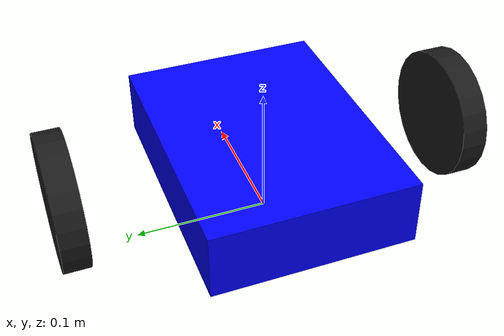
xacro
<?xml version="1.0"?>
<robot xmlns:xacro="http://www.ros.org/wiki/xacro" name="simple_diff_drive">

  <!-- Properties (constants) -->
  <xacro:property name="wheel_radius" value="0.05"/>
  <xacro:property name="wheel_separation" value="0.3"/>
  <xacro:property name="base_length" value="0.2"/>
  <xacro:property name="base_width" value="0.15"/>

  <!-- Base link -->
  <link name="base_footprint"/>

  <joint name="base_joint" type="fixed">
    <parent link="base_footprint"/>
    <child link="base_link"/>
    <origin xyz="0 0 ${wheel_radius}" rpy="0 0 0"/>
  </joint>

  <link name="base_link">
    <visual>
      <geometry>
        <box size="${base_length} ${base_width} 0.05"/>
      </geometry>
      <material name="blue">
        <color rgba="0 0 1 1"/>
      </material>
    </visual>
    <collision>
      <geometry>
        <box size="${base_length} ${base_width} 0.05"/>
      </geometry>
    </collision>
  </link>

  <!-- Left wheel -->
  <joint name="left_wheel_joint" type="continuous">
    <parent link="base_link"/>
    <child link="left_wheel"/>
    <origin xyz="0 ${wheel_separation * 0.5} 0" rpy="-1.5708 0 0"/>
    <axis xyz="0 0 1"/>
  </joint>

  <link name="left_wheel">
    <visual>
      <geometry>
        <cylinder radius="${wheel_radius}" length="0.02"/>
      </geometry>
      <material name="black"><color rgba="0.1 0.1 0.1 1"/></material>
    </visual>
  </link>

  <!-- Right wheel -->
  <joint name="right_wheel_joint" type="continuous">
    <parent link="base_link"/>
    <child link="right_wheel"/>
    <origin xyz="0 ${-wheel_separation * 0.5} 0" rpy="-1.5708 0 0"/>
    <axis xyz="0 0 1"/>
  </joint>

  <link name="right_wheel">
    <visual>
      <geometry>
        <cylinder radius="${wheel_radius}" length="0.02"/>
      </geometry>
      <material name="black"><color rgba="0.1 0.1 0.1 1"/></material>
    </visual>
  </link>

</robot>
